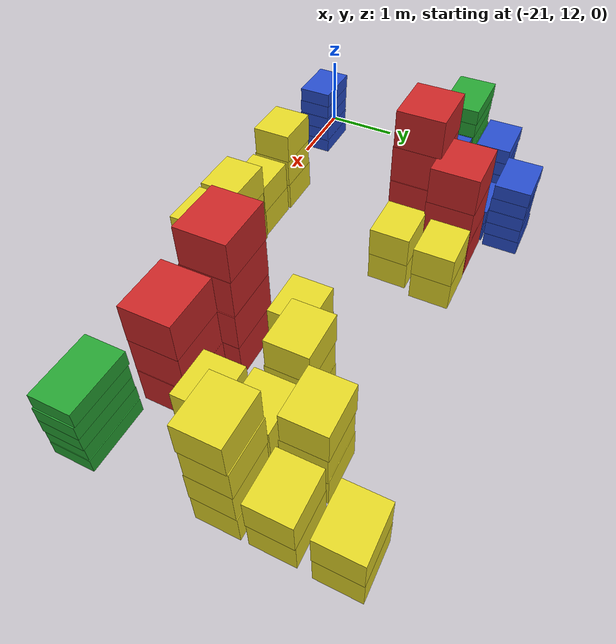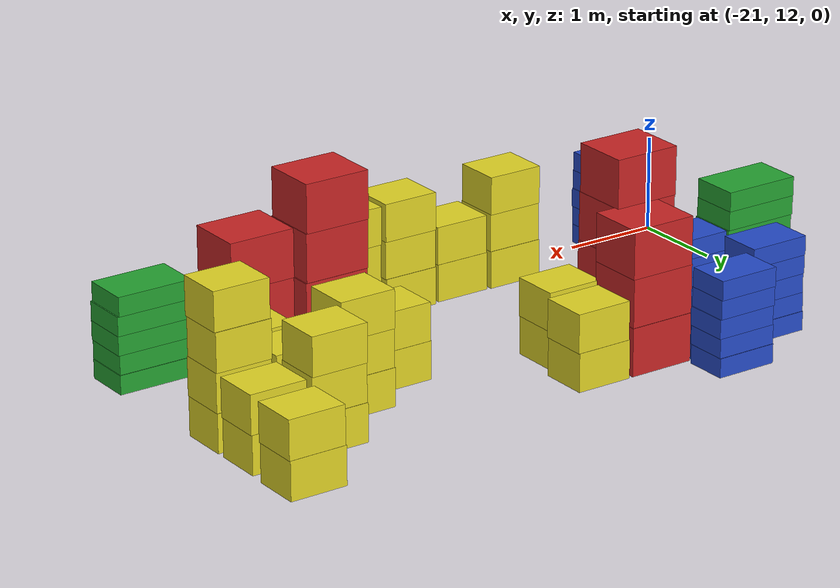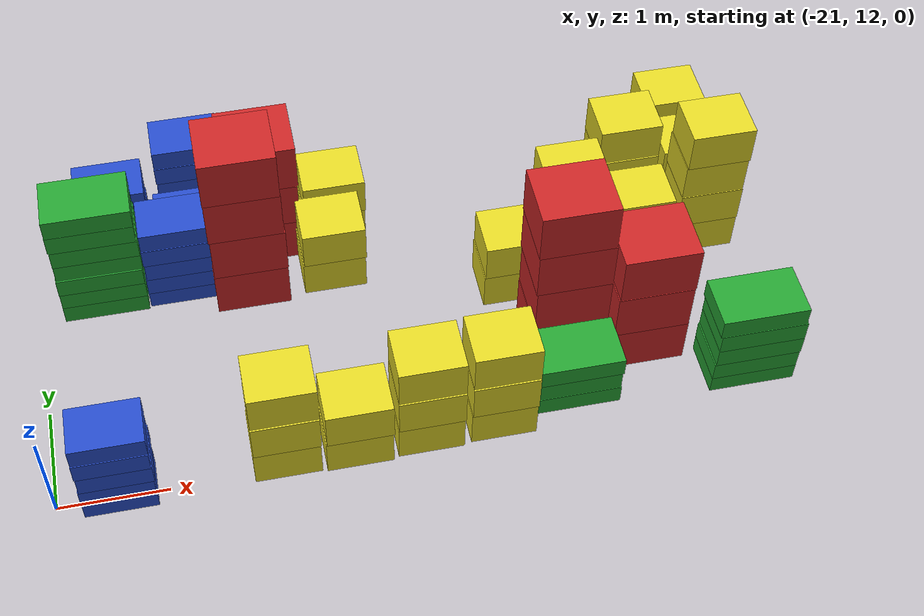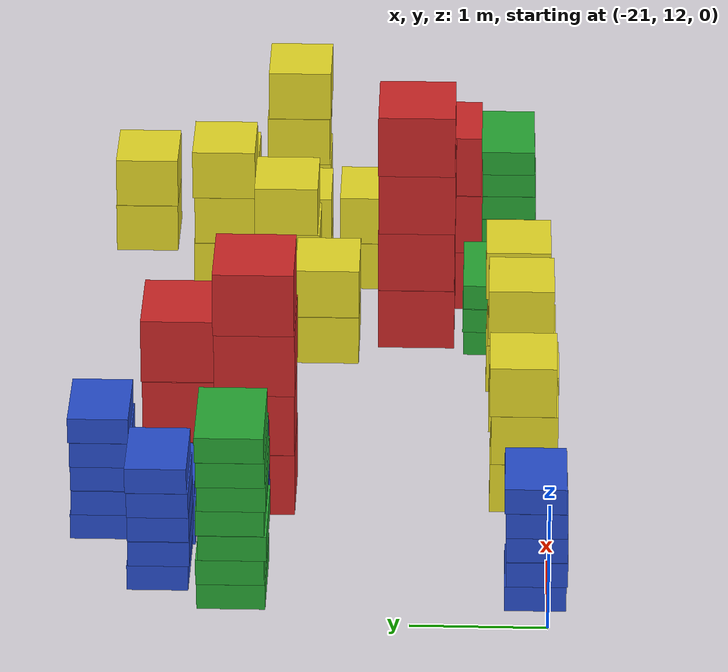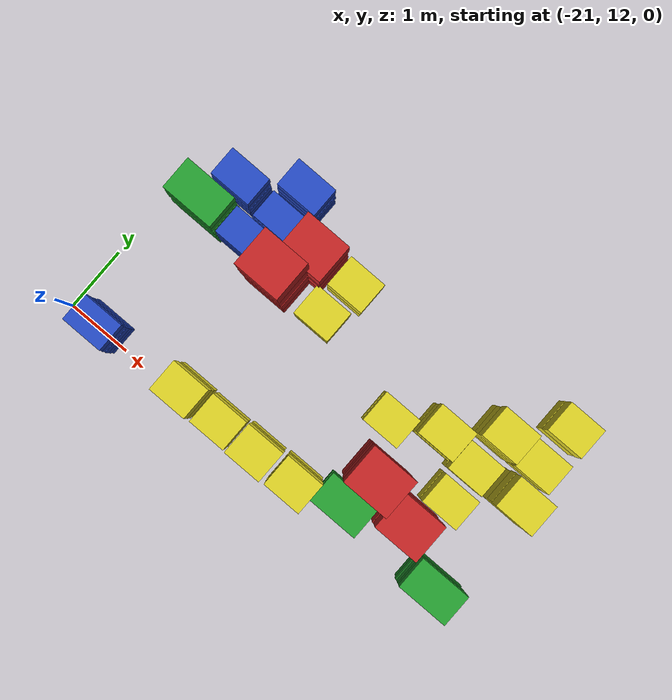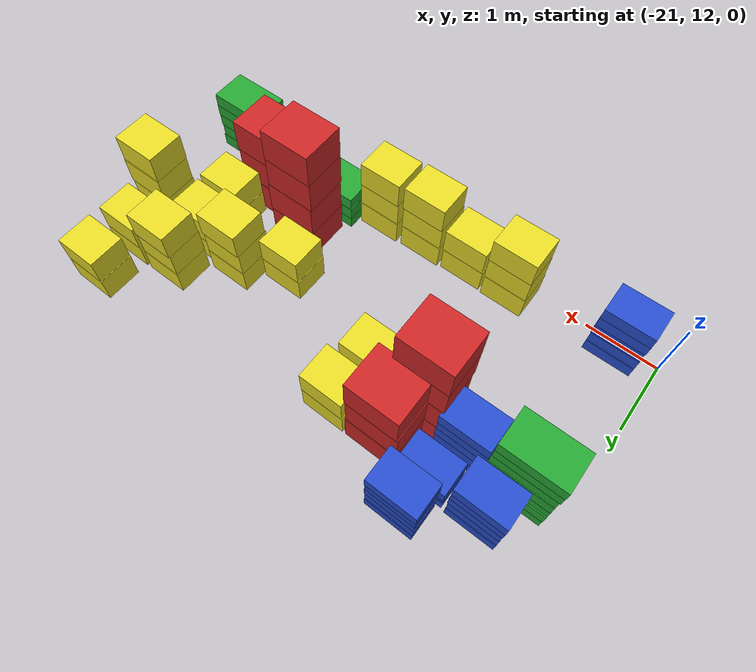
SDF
<sdf version="1.6">
 <world name="default">
  <include><uri>model://sun</uri></include>
  <model name="baggage_B_x5_9">
   <model name="baggage_B_0">
    <static>1</static>
    <link name="link">
     <collision name="collision"><geometry><box><size>0.65 0.45 0.2</size></box></geometry></collision>
     <visual name="visual">
      <geometry><box><size>0.65 0.45 0.2</size></box></geometry>
      <material>
       <script><uri>file://media/materials/scripts/gazebo.material</uri><name>Gazebo/Blue</name></script>
      </material>
     </visual>
    </link>
    <pose>0 0 0.1 0 -0 0</pose>
   </model>
   <model name="baggage_B_1">
    <static>1</static>
    <link name="link">
     <collision name="collision"><geometry><box><size>0.65 0.45 0.2</size></box></geometry></collision>
     <visual name="visual">
      <geometry><box><size>0.65 0.45 0.2</size></box></geometry>
      <material>
       <script><uri>file://media/materials/scripts/gazebo.material</uri><name>Gazebo/Blue</name></script>
      </material>
     </visual>
    </link>
    <pose>-0.0014 -0.0091 0.3 0 -0 0</pose>
   </model>
   <model name="baggage_B_2">
    <static>1</static>
    <link name="link">
     <collision name="collision"><geometry><box><size>0.65 0.45 0.2</size></box></geometry></collision>
     <visual name="visual">
      <geometry><box><size>0.65 0.45 0.2</size></box></geometry>
      <material>
       <script><uri>file://media/materials/scripts/gazebo.material</uri><name>Gazebo/Blue</name></script>
      </material>
     </visual>
    </link>
    <pose>0.0076 -0.0066 0.5 0 -0 0</pose>
   </model>
   <model name="baggage_B_3">
    <static>1</static>
    <link name="link">
     <collision name="collision"><geometry><box><size>0.65 0.45 0.2</size></box></geometry></collision>
     <visual name="visual">
      <geometry><box><size>0.65 0.45 0.2</size></box></geometry>
      <material>
       <script><uri>file://media/materials/scripts/gazebo.material</uri><name>Gazebo/Blue</name></script>
      </material>
     </visual>
    </link>
    <pose>0 -0.0032 0.7 0 -0 0</pose>
   </model>
   <model name="baggage_B_4">
    <static>1</static>
    <link name="link">
     <collision name="collision"><geometry><box><size>0.65 0.45 0.2</size></box></geometry></collision>
     <visual name="visual">
      <geometry><box><size>0.65 0.45 0.2</size></box></geometry>
      <material>
       <script><uri>file://media/materials/scripts/gazebo.material</uri><name>Gazebo/Blue</name></script>
      </material>
     </visual>
    </link>
    <pose>0.0023 0.0073 0.9 0 -0 0</pose>
   </model>
   <pose>-20.4337 12.0898 0 0 -0 0</pose>
  </model>
  <model name="baggage_C_x2_7">
   <model name="baggage_C_0">
    <static>1</static>
    <link name="link">
     <collision name="collision"><geometry><box><size>0.6 0.5 0.4</size></box></geometry></collision>
     <visual name="visual">
      <geometry><box><size>0.6 0.5 0.4</size></box></geometry>
      <material>
       <script><uri>file://media/materials/scripts/gazebo.material</uri><name>Gazebo/Yellow</name></script>
      </material>
     </visual>
    </link>
    <pose>0 0 0.2 0 -0 0</pose>
   </model>
   <model name="baggage_C_1">
    <static>1</static>
    <link name="link">
     <collision name="collision"><geometry><box><size>0.6 0.5 0.4</size></box></geometry></collision>
     <visual name="visual">
      <geometry><box><size>0.6 0.5 0.4</size></box></geometry>
      <material>
       <script><uri>file://media/materials/scripts/gazebo.material</uri><name>Gazebo/Yellow</name></script>
      </material>
     </visual>
    </link>
    <pose>0.0093 -0.002 0.6 0 -0 0</pose>
   </model>
   <pose>-14.5581 15.2406 0 0 -0 0</pose>
  </model>
  <model name="baggage_C_x2_8">
   <model name="baggage_C_0">
    <static>1</static>
    <link name="link">
     <collision name="collision"><geometry><box><size>0.6 0.5 0.4</size></box></geometry></collision>
     <visual name="visual">
      <geometry><box><size>0.6 0.5 0.4</size></box></geometry>
      <material>
       <script><uri>file://media/materials/scripts/gazebo.material</uri><name>Gazebo/Yellow</name></script>
      </material>
     </visual>
    </link>
    <pose>0 0 0.2 0 -0 0</pose>
   </model>
   <model name="baggage_C_1">
    <static>1</static>
    <link name="link">
     <collision name="collision"><geometry><box><size>0.6 0.5 0.4</size></box></geometry></collision>
     <visual name="visual">
      <geometry><box><size>0.6 0.5 0.4</size></box></geometry>
      <material>
       <script><uri>file://media/materials/scripts/gazebo.material</uri><name>Gazebo/Yellow</name></script>
      </material>
     </visual>
    </link>
    <pose>0.0093 -0.002 0.6 0 -0 0</pose>
   </model>
   <pose>-14.5734 14.5828 0 0 -0 0</pose>
  </model>
  <model name="baggage_C_x3_6">
   <model name="baggage_C_0">
    <static>1</static>
    <link name="link">
     <collision name="collision"><geometry><box><size>0.6 0.5 0.4</size></box></geometry></collision>
     <visual name="visual">
      <geometry><box><size>0.6 0.5 0.4</size></box></geometry>
      <material>
       <script><uri>file://media/materials/scripts/gazebo.material</uri><name>Gazebo/Yellow</name></script>
      </material>
     </visual>
    </link>
    <pose>0 0 0.2 0 -0 0</pose>
   </model>
   <model name="baggage_C_1">
    <static>1</static>
    <link name="link">
     <collision name="collision"><geometry><box><size>0.6 0.5 0.4</size></box></geometry></collision>
     <visual name="visual">
      <geometry><box><size>0.6 0.5 0.4</size></box></geometry>
      <material>
       <script><uri>file://media/materials/scripts/gazebo.material</uri><name>Gazebo/Yellow</name></script>
      </material>
     </visual>
    </link>
    <pose>0.0062 -0.0069 0.6 0 -0 0</pose>
   </model>
   <model name="baggage_C_2">
    <static>1</static>
    <link name="link">
     <collision name="collision"><geometry><box><size>0.6 0.5 0.4</size></box></geometry></collision>
     <visual name="visual">
      <geometry><box><size>0.6 0.5 0.4</size></box></geometry>
      <material>
       <script><uri>file://media/materials/scripts/gazebo.material</uri><name>Gazebo/Yellow</name></script>
      </material>
     </visual>
    </link>
    <pose>0.0089 0.0083 1 0 -0 0</pose>
   </model>
   <pose>-15.24 14.5733 0 0 -0 0</pose>
  </model>
  <model name="baggage_C_x2_9">
   <model name="baggage_C_0">
    <static>1</static>
    <link name="link">
     <collision name="collision"><geometry><box><size>0.6 0.5 0.4</size></box></geometry></collision>
     <visual name="visual">
      <geometry><box><size>0.6 0.5 0.4</size></box></geometry>
      <material>
       <script><uri>file://media/materials/scripts/gazebo.material</uri><name>Gazebo/Yellow</name></script>
      </material>
     </visual>
    </link>
    <pose>0 0 0.2 0 -0 0</pose>
   </model>
   <model name="baggage_C_1">
    <static>1</static>
    <link name="link">
     <collision name="collision"><geometry><box><size>0.6 0.5 0.4</size></box></geometry></collision>
     <visual name="visual">
      <geometry><box><size>0.6 0.5 0.4</size></box></geometry>
      <material>
       <script><uri>file://media/materials/scripts/gazebo.material</uri><name>Gazebo/Yellow</name></script>
      </material>
     </visual>
    </link>
    <pose>0.0093 -0.002 0.6 0 -0 0</pose>
   </model>
   <pose>-15.2448 13.9715 0 0 -0 0</pose>
  </model>
  <model name="baggage_C_x3_7">
   <model name="baggage_C_0">
    <static>1</static>
    <link name="link">
     <collision name="collision"><geometry><box><size>0.6 0.5 0.4</size></box></geometry></collision>
     <visual name="visual">
      <geometry><box><size>0.6 0.5 0.4</size></box></geometry>
      <material>
       <script><uri>file://media/materials/scripts/gazebo.material</uri><name>Gazebo/Yellow</name></script>
      </material>
     </visual>
    </link>
    <pose>0 0 0.2 0 -0 0</pose>
   </model>
   <model name="baggage_C_1">
    <static>1</static>
    <link name="link">
     <collision name="collision"><geometry><box><size>0.6 0.5 0.4</size></box></geometry></collision>
     <visual name="visual">
      <geometry><box><size>0.6 0.5 0.4</size></box></geometry>
      <material>
       <script><uri>file://media/materials/scripts/gazebo.material</uri><name>Gazebo/Yellow</name></script>
      </material>
     </visual>
    </link>
    <pose>0.0062 -0.0069 0.6 0 -0 0</pose>
   </model>
   <model name="baggage_C_2">
    <static>1</static>
    <link name="link">
     <collision name="collision"><geometry><box><size>0.6 0.5 0.4</size></box></geometry></collision>
     <visual name="visual">
      <geometry><box><size>0.6 0.5 0.4</size></box></geometry>
      <material>
       <script><uri>file://media/materials/scripts/gazebo.material</uri><name>Gazebo/Yellow</name></script>
      </material>
     </visual>
    </link>
    <pose>0.0089 0.0083 1 0 -0 0</pose>
   </model>
   <pose>-15.8997 14.0504 0 0 -0 0</pose>
  </model>
  <model name="baggage_C_x4_1">
   <model name="baggage_C_0">
    <static>1</static>
    <link name="link">
     <collision name="collision"><geometry><box><size>0.6 0.5 0.4</size></box></geometry></collision>
     <visual name="visual">
      <geometry><box><size>0.6 0.5 0.4</size></box></geometry>
      <material>
       <script><uri>file://media/materials/scripts/gazebo.material</uri><name>Gazebo/Yellow</name></script>
      </material>
     </visual>
    </link>
    <pose>0 0 0.2 0 -0 0</pose>
   </model>
   <model name="baggage_C_1">
    <static>1</static>
    <link name="link">
     <collision name="collision"><geometry><box><size>0.6 0.5 0.4</size></box></geometry></collision>
     <visual name="visual">
      <geometry><box><size>0.6 0.5 0.4</size></box></geometry>
      <material>
       <script><uri>file://media/materials/scripts/gazebo.material</uri><name>Gazebo/Yellow</name></script>
      </material>
     </visual>
    </link>
    <pose>0.0008 -0.0083 0.6 0 -0 0</pose>
   </model>
   <model name="baggage_C_2">
    <static>1</static>
    <link name="link">
     <collision name="collision"><geometry><box><size>0.6 0.5 0.4</size></box></geometry></collision>
     <visual name="visual">
      <geometry><box><size>0.6 0.5 0.4</size></box></geometry>
      <material>
       <script><uri>file://media/materials/scripts/gazebo.material</uri><name>Gazebo/Yellow</name></script>
      </material>
     </visual>
    </link>
    <pose>0.0001 0.0014 1 0 -0 0</pose>
   </model>
   <model name="baggage_C_3">
    <static>1</static>
    <link name="link">
     <collision name="collision"><geometry><box><size>0.6 0.5 0.4</size></box></geometry></collision>
     <visual name="visual">
      <geometry><box><size>0.6 0.5 0.4</size></box></geometry>
      <material>
       <script><uri>file://media/materials/scripts/gazebo.material</uri><name>Gazebo/Yellow</name></script>
      </material>
     </visual>
    </link>
    <pose>0.007 -0.0089 1.4 0 -0 0</pose>
   </model>
   <pose>-14.5712 13.9995 0 0 -0 0</pose>
  </model>
  <model name="baggage_C_x2_10">
   <model name="baggage_C_0">
    <static>1</static>
    <link name="link">
     <collision name="collision"><geometry><box><size>0.6 0.5 0.4</size></box></geometry></collision>
     <visual name="visual">
      <geometry><box><size>0.6 0.5 0.4</size></box></geometry>
      <material>
       <script><uri>file://media/materials/scripts/gazebo.material</uri><name>Gazebo/Yellow</name></script>
      </material>
     </visual>
    </link>
    <pose>0 0 0.2 0 -0 0</pose>
   </model>
   <model name="baggage_C_1">
    <static>1</static>
    <link name="link">
     <collision name="collision"><geometry><box><size>0.6 0.5 0.4</size></box></geometry></collision>
     <visual name="visual">
      <geometry><box><size>0.6 0.5 0.4</size></box></geometry>
      <material>
       <script><uri>file://media/materials/scripts/gazebo.material</uri><name>Gazebo/Yellow</name></script>
      </material>
     </visual>
    </link>
    <pose>0.0093 -0.002 0.6 0 -0 0</pose>
   </model>
   <pose>-15.2155 13.4005 0 0 -0 0</pose>
  </model>
  <model name="baggage_B_x5_10">
   <model name="baggage_B_0">
    <static>1</static>
    <link name="link">
     <collision name="collision"><geometry><box><size>0.65 0.45 0.2</size></box></geometry></collision>
     <visual name="visual">
      <geometry><box><size>0.65 0.45 0.2</size></box></geometry>
      <material>
       <script><uri>file://media/materials/scripts/gazebo.material</uri><name>Gazebo/Blue</name></script>
      </material>
     </visual>
    </link>
    <pose>0 0 0.1 0 -0 0</pose>
   </model>
   <model name="baggage_B_1">
    <static>1</static>
    <link name="link">
     <collision name="collision"><geometry><box><size>0.65 0.45 0.2</size></box></geometry></collision>
     <visual name="visual">
      <geometry><box><size>0.65 0.45 0.2</size></box></geometry>
      <material>
       <script><uri>file://media/materials/scripts/gazebo.material</uri><name>Gazebo/Blue</name></script>
      </material>
     </visual>
    </link>
    <pose>-0.0014 -0.0091 0.3 0 -0 0</pose>
   </model>
   <model name="baggage_B_2">
    <static>1</static>
    <link name="link">
     <collision name="collision"><geometry><box><size>0.65 0.45 0.2</size></box></geometry></collision>
     <visual name="visual">
      <geometry><box><size>0.65 0.45 0.2</size></box></geometry>
      <material>
       <script><uri>file://media/materials/scripts/gazebo.material</uri><name>Gazebo/Blue</name></script>
      </material>
     </visual>
    </link>
    <pose>0.0076 -0.0066 0.5 0 -0 0</pose>
   </model>
   <model name="baggage_B_3">
    <static>1</static>
    <link name="link">
     <collision name="collision"><geometry><box><size>0.65 0.45 0.2</size></box></geometry></collision>
     <visual name="visual">
      <geometry><box><size>0.65 0.45 0.2</size></box></geometry>
      <material>
       <script><uri>file://media/materials/scripts/gazebo.material</uri><name>Gazebo/Blue</name></script>
      </material>
     </visual>
    </link>
    <pose>0 -0.0032 0.7 0 -0 0</pose>
   </model>
   <model name="baggage_B_4">
    <static>1</static>
    <link name="link">
     <collision name="collision"><geometry><box><size>0.65 0.45 0.2</size></box></geometry></collision>
     <visual name="visual">
      <geometry><box><size>0.65 0.45 0.2</size></box></geometry>
      <material>
       <script><uri>file://media/materials/scripts/gazebo.material</uri><name>Gazebo/Blue</name></script>
      </material>
     </visual>
    </link>
    <pose>0.0023 0.0073 0.9 0 -0 0</pose>
   </model>
   <pose>-19.436 15.3181 0 0 -0 0</pose>
  </model>
  <model name="baggage_B_x3_12">
   <model name="baggage_B_0">
    <static>1</static>
    <link name="link">
     <collision name="collision"><geometry><box><size>0.65 0.45 0.2</size></box></geometry></collision>
     <visual name="visual">
      <geometry><box><size>0.65 0.45 0.2</size></box></geometry>
      <material>
       <script><uri>file://media/materials/scripts/gazebo.material</uri><name>Gazebo/Blue</name></script>
      </material>
     </visual>
    </link>
    <pose>0 0 0.1 0 -0 0</pose>
   </model>
   <model name="baggage_B_1">
    <static>1</static>
    <link name="link">
     <collision name="collision"><geometry><box><size>0.65 0.45 0.2</size></box></geometry></collision>
     <visual name="visual">
      <geometry><box><size>0.65 0.45 0.2</size></box></geometry>
      <material>
       <script><uri>file://media/materials/scripts/gazebo.material</uri><name>Gazebo/Blue</name></script>
      </material>
     </visual>
    </link>
    <pose>0.0028 -0.0086 0.3 0 -0 0</pose>
   </model>
   <model name="baggage_B_2">
    <static>1</static>
    <link name="link">
     <collision name="collision"><geometry><box><size>0.65 0.45 0.2</size></box></geometry></collision>
     <visual name="visual">
      <geometry><box><size>0.65 0.45 0.2</size></box></geometry>
      <material>
       <script><uri>file://media/materials/scripts/gazebo.material</uri><name>Gazebo/Blue</name></script>
      </material>
     </visual>
    </link>
    <pose>0.0092 0.006 0.4 0 -0 0</pose>
   </model>
   <pose>-19.5014 14.8307 0 0 -0 0</pose>
  </model>
  <model name="baggage_B_x5_11">
   <model name="baggage_B_0">
    <static>1</static>
    <link name="link">
     <collision name="collision"><geometry><box><size>0.65 0.45 0.2</size></box></geometry></collision>
     <visual name="visual">
      <geometry><box><size>0.65 0.45 0.2</size></box></geometry>
      <material>
       <script><uri>file://media/materials/scripts/gazebo.material</uri><name>Gazebo/Blue</name></script>
      </material>
     </visual>
    </link>
    <pose>0 0 0.1 0 -0 0</pose>
   </model>
   <model name="baggage_B_1">
    <static>1</static>
    <link name="link">
     <collision name="collision"><geometry><box><size>0.65 0.45 0.2</size></box></geometry></collision>
     <visual name="visual">
      <geometry><box><size>0.65 0.45 0.2</size></box></geometry>
      <material>
       <script><uri>file://media/materials/scripts/gazebo.material</uri><name>Gazebo/Blue</name></script>
      </material>
     </visual>
    </link>
    <pose>-0.0014 -0.0091 0.3 0 -0 0</pose>
   </model>
   <model name="baggage_B_2">
    <static>1</static>
    <link name="link">
     <collision name="collision"><geometry><box><size>0.65 0.45 0.2</size></box></geometry></collision>
     <visual name="visual">
      <geometry><box><size>0.65 0.45 0.2</size></box></geometry>
      <material>
       <script><uri>file://media/materials/scripts/gazebo.material</uri><name>Gazebo/Blue</name></script>
      </material>
     </visual>
    </link>
    <pose>0.0076 -0.0066 0.5 0 -0 0</pose>
   </model>
   <model name="baggage_B_3">
    <static>1</static>
    <link name="link">
     <collision name="collision"><geometry><box><size>0.65 0.45 0.2</size></box></geometry></collision>
     <visual name="visual">
      <geometry><box><size>0.65 0.45 0.2</size></box></geometry>
      <material>
       <script><uri>file://media/materials/scripts/gazebo.material</uri><name>Gazebo/Blue</name></script>
      </material>
     </visual>
    </link>
    <pose>0 -0.0032 0.7 0 -0 0</pose>
   </model>
   <model name="baggage_B_4">
    <static>1</static>
    <link name="link">
     <collision name="collision"><geometry><box><size>0.65 0.45 0.2</size></box></geometry></collision>
     <visual name="visual">
      <geometry><box><size>0.65 0.45 0.2</size></box></geometry>
      <material>
       <script><uri>file://media/materials/scripts/gazebo.material</uri><name>Gazebo/Blue</name></script>
      </material>
     </visual>
    </link>
    <pose>0.0023 0.0073 0.9 0 -0 0</pose>
   </model>
   <pose>-20.2017 14.8519 0 0 -0 0</pose>
  </model>
  <model name="baggage_D_x7_2">
   <model name="baggage_D_0">
    <static>1</static>
    <link name="link">
     <collision name="collision"><geometry><box><size>0.8 0.5 0.2</size></box></geometry></collision>
     <visual name="visual">
      <geometry><box><size>0.8 0.5 0.2</size></box></geometry>
      <material>
       <script><uri>file://media/materials/scripts/gazebo.material</uri><name>Gazebo/Green</name></script>
      </material>
     </visual>
    </link>
    <pose>0 0 0.1 0 -0 0</pose>
   </model>
   <model name="baggage_D_1">
    <static>1</static>
    <link name="link">
     <collision name="collision"><geometry><box><size>0.8 0.5 0.2</size></box></geometry></collision>
     <visual name="visual">
      <geometry><box><size>0.8 0.5 0.2</size></box></geometry>
      <material>
       <script><uri>file://media/materials/scripts/gazebo.material</uri><name>Gazebo/Green</name></script>
      </material>
     </visual>
    </link>
    <pose>0.0009 0.0063 0.3 0 -0 0</pose>
   </model>
   <model name="baggage_D_2">
    <static>1</static>
    <link name="link">
     <collision name="collision"><geometry><box><size>0.8 0.5 0.2</size></box></geometry></collision>
     <visual name="visual">
      <geometry><box><size>0.8 0.5 0.2</size></box></geometry>
      <material>
       <script><uri>file://media/materials/scripts/gazebo.material</uri><name>Gazebo/Green</name></script>
      </material>
     </visual>
    </link>
    <pose>0.0011 -0.0098 0.5 0 -0 0</pose>
   </model>
   <model name="baggage_D_3">
    <static>1</static>
    <link name="link">
     <collision name="collision"><geometry><box><size>0.8 0.5 0.2</size></box></geometry></collision>
     <visual name="visual">
      <geometry><box><size>0.8 0.5 0.2</size></box></geometry>
      <material>
       <script><uri>file://media/materials/scripts/gazebo.material</uri><name>Gazebo/Green</name></script>
      </material>
     </visual>
    </link>
    <pose>0.0089 0.0055 0.7 0 -0 0</pose>
   </model>
   <model name="baggage_D_4">
    <static>1</static>
    <link name="link">
     <collision name="collision"><geometry><box><size>0.8 0.5 0.2</size></box></geometry></collision>
     <visual name="visual">
      <geometry><box><size>0.8 0.5 0.2</size></box></geometry>
      <material>
       <script><uri>file://media/materials/scripts/gazebo.material</uri><name>Gazebo/Green</name></script>
      </material>
     </visual>
    </link>
    <pose>0.009 -0.0056 0.9 0 -0 0</pose>
   </model>
   <model name="baggage_D_5">
    <static>1</static>
    <link name="link">
     <collision name="collision"><geometry><box><size>0.8 0.5 0.2</size></box></geometry></collision>
     <visual name="visual">
      <geometry><box><size>0.8 0.5 0.2</size></box></geometry>
      <material>
       <script><uri>file://media/materials/scripts/gazebo.material</uri><name>Gazebo/Green</name></script>
      </material>
     </visual>
    </link>
    <pose>0.0001 0.0013 1.1 0 -0 0</pose>
   </model>
   <model name="baggage_D_6">
    <static>1</static>
    <link name="link">
     <collision name="collision"><geometry><box><size>0.8 0.5 0.2</size></box></geometry></collision>
     <visual name="visual">
      <geometry><box><size>0.8 0.5 0.2</size></box></geometry>
      <material>
       <script><uri>file://media/materials/scripts/gazebo.material</uri><name>Gazebo/Green</name></script>
      </material>
     </visual>
    </link>
    <pose>0.0019 0.009 1.3 0 -0 0</pose>
   </model>
   <pose>-20.393 14.303 0 0 -0 0</pose>
  </model>
  <model name="baggage_D_x5_5">
   <model name="baggage_D_0">
    <static>1</static>
    <link name="link">
     <collision name="collision"><geometry><box><size>0.8 0.5 0.2</size></box></geometry></collision>
     <visual name="visual">
      <geometry><box><size>0.8 0.5 0.2</size></box></geometry>
      <material>
       <script><uri>file://media/materials/scripts/gazebo.material</uri><name>Gazebo/Green</name></script>
      </material>
     </visual>
    </link>
    <pose>0 0 0.1 0 -0 0</pose>
   </model>
   <model name="baggage_D_1">
    <static>1</static>
    <link name="link">
     <collision name="collision"><geometry><box><size>0.8 0.5 0.2</size></box></geometry></collision>
     <visual name="visual">
      <geometry><box><size>0.8 0.5 0.2</size></box></geometry>
      <material>
       <script><uri>file://media/materials/scripts/gazebo.material</uri><name>Gazebo/Green</name></script>
      </material>
     </visual>
    </link>
    <pose>-0.0065 -0.0092 0.3 0 -0 0</pose>
   </model>
   <model name="baggage_D_2">
    <static>1</static>
    <link name="link">
     <collision name="collision"><geometry><box><size>0.8 0.5 0.2</size></box></geometry></collision>
     <visual name="visual">
      <geometry><box><size>0.8 0.5 0.2</size></box></geometry>
      <material>
       <script><uri>file://media/materials/scripts/gazebo.material</uri><name>Gazebo/Green</name></script>
      </material>
     </visual>
    </link>
    <pose>0.005 -0.0052 0.5 0 -0 0</pose>
   </model>
   <model name="baggage_D_3">
    <static>1</static>
    <link name="link">
     <collision name="collision"><geometry><box><size>0.8 0.5 0.2</size></box></geometry></collision>
     <visual name="visual">
      <geometry><box><size>0.8 0.5 0.2</size></box></geometry>
      <material>
       <script><uri>file://media/materials/scripts/gazebo.material</uri><name>Gazebo/Green</name></script>
      </material>
     </visual>
    </link>
    <pose>0.0074 0.0002 0.7 0 -0 0</pose>
   </model>
   <model name="baggage_D_4">
    <static>1</static>
    <link name="link">
     <collision name="collision"><geometry><box><size>0.8 0.5 0.2</size></box></geometry></collision>
     <visual name="visual">
      <geometry><box><size>0.8 0.5 0.2</size></box></geometry>
      <material>
       <script><uri>file://media/materials/scripts/gazebo.material</uri><name>Gazebo/Green</name></script>
      </material>
     </visual>
    </link>
    <pose>-0.006 0.0081 0.9 0 -0 0</pose>
   </model>
   <pose>-14.6214 12.3327 0 0 -0 0</pose>
  </model>
  <model name="baggage_A_x3_6">
   <model name="baggage_A_0">
    <static>1</static>
    <link name="link">
     <collision name="collision"><geometry><box><size>0.7 0.6 0.5</size></box></geometry></collision>
     <visual name="visual">
      <geometry><box><size>0.7 0.6 0.5</size></box></geometry>
      <material>
       <script><uri>file://media/materials/scripts/gazebo.material</uri><name>Gazebo/Red</name></script>
      </material>
     </visual>
    </link>
    <pose>0 0 0.25 0 -0 0</pose>
   </model>
   <model name="baggage_A_1">
    <static>1</static>
    <link name="link">
     <collision name="collision"><geometry><box><size>0.7 0.6 0.5</size></box></geometry></collision>
     <visual name="visual">
      <geometry><box><size>0.7 0.6 0.5</size></box></geometry>
      <material>
       <script><uri>file://media/materials/scripts/gazebo.material</uri><name>Gazebo/Red</name></script>
      </material>
     </visual>
    </link>
    <pose>-0.006 -0.0077 0.75 0 -0 0</pose>
   </model>
   <model name="baggage_A_2">
    <static>1</static>
    <link name="link">
     <collision name="collision"><geometry><box><size>0.7 0.6 0.5</size></box></geometry></collision>
     <visual name="visual">
      <geometry><box><size>0.7 0.6 0.5</size></box></geometry>
      <material>
       <script><uri>file://media/materials/scripts/gazebo.material</uri><name>Gazebo/Red</name></script>
      </material>
     </visual>
    </link>
    <pose>0.0045 0.0005 1.25 0 -0 0</pose>
   </model>
   <pose>-15.5025 12.8173 0 0 -0 0</pose>
  </model>
  <model name="baggage_C_x3_8">
   <model name="baggage_C_0">
    <static>1</static>
    <link name="link">
     <collision name="collision"><geometry><box><size>0.6 0.5 0.4</size></box></geometry></collision>
     <visual name="visual">
      <geometry><box><size>0.6 0.5 0.4</size></box></geometry>
      <material>
       <script><uri>file://media/materials/scripts/gazebo.material</uri><name>Gazebo/Yellow</name></script>
      </material>
     </visual>
    </link>
    <pose>0 0 0.2 0 -0 0</pose>
   </model>
   <model name="baggage_C_1">
    <static>1</static>
    <link name="link">
     <collision name="collision"><geometry><box><size>0.6 0.5 0.4</size></box></geometry></collision>
     <visual name="visual">
      <geometry><box><size>0.6 0.5 0.4</size></box></geometry>
      <material>
       <script><uri>file://media/materials/scripts/gazebo.material</uri><name>Gazebo/Yellow</name></script>
      </material>
     </visual>
    </link>
    <pose>0.0062 -0.0069 0.6 0 -0 0</pose>
   </model>
   <model name="baggage_C_2">
    <static>1</static>
    <link name="link">
     <collision name="collision"><geometry><box><size>0.6 0.5 0.4</size></box></geometry></collision>
     <visual name="visual">
      <geometry><box><size>0.6 0.5 0.4</size></box></geometry>
      <material>
       <script><uri>file://media/materials/scripts/gazebo.material</uri><name>Gazebo/Yellow</name></script>
      </material>
     </visual>
    </link>
    <pose>0.0089 0.0083 1 0 -0 0</pose>
   </model>
   <pose>-16.997 12.2151 0 0 -0 0</pose>
  </model>
  <model name="baggage_C_x3_10">
   <model name="baggage_C_0">
    <static>1</static>
    <link name="link">
     <collision name="collision"><geometry><box><size>0.6 0.5 0.4</size></box></geometry></collision>
     <visual name="visual">
      <geometry><box><size>0.6 0.5 0.4</size></box></geometry>
      <material>
       <script><uri>file://media/materials/scripts/gazebo.material</uri><name>Gazebo/Yellow</name></script>
      </material>
     </visual>
    </link>
    <pose>0 0 0.2 0 -0 0</pose>
   </model>
   <model name="baggage_C_1">
    <static>1</static>
    <link name="link">
     <collision name="collision"><geometry><box><size>0.6 0.5 0.4</size></box></geometry></collision>
     <visual name="visual">
      <geometry><box><size>0.6 0.5 0.4</size></box></geometry>
      <material>
       <script><uri>file://media/materials/scripts/gazebo.material</uri><name>Gazebo/Yellow</name></script>
      </material>
     </visual>
    </link>
    <pose>0.0062 -0.0069 0.6 0 -0 0</pose>
   </model>
   <model name="baggage_C_2">
    <static>1</static>
    <link name="link">
     <collision name="collision"><geometry><box><size>0.6 0.5 0.4</size></box></geometry></collision>
     <visual name="visual">
      <geometry><box><size>0.6 0.5 0.4</size></box></geometry>
      <material>
       <script><uri>file://media/materials/scripts/gazebo.material</uri><name>Gazebo/Yellow</name></script>
      </material>
     </visual>
    </link>
    <pose>0.0089 0.0083 1 0 -0 0</pose>
   </model>
   <pose>-17.6644 12.1922 0 0 -0 0</pose>
  </model>
  <model name="baggage_C_x2_12">
   <model name="baggage_C_0">
    <static>1</static>
    <link name="link">
     <collision name="collision"><geometry><box><size>0.6 0.5 0.4</size></box></geometry></collision>
     <visual name="visual">
      <geometry><box><size>0.6 0.5 0.4</size></box></geometry>
      <material>
       <script><uri>file://media/materials/scripts/gazebo.material</uri><name>Gazebo/Yellow</name></script>
      </material>
     </visual>
    </link>
    <pose>0 0 0.2 0 -0 0</pose>
   </model>
   <model name="baggage_C_1">
    <static>1</static>
    <link name="link">
     <collision name="collision"><geometry><box><size>0.6 0.5 0.4</size></box></geometry></collision>
     <visual name="visual">
      <geometry><box><size>0.6 0.5 0.4</size></box></geometry>
      <material>
       <script><uri>file://media/materials/scripts/gazebo.material</uri><name>Gazebo/Yellow</name></script>
      </material>
     </visual>
    </link>
    <pose>0.0093 -0.002 0.6 0 -0 0</pose>
   </model>
   <pose>-18.3115 12.1671 0 0 -0 0</pose>
  </model>
  <model name="baggage_C_x3_13">
   <model name="baggage_C_0">
    <static>1</static>
    <link name="link">
     <collision name="collision"><geometry><box><size>0.6 0.5 0.4</size></box></geometry></collision>
     <visual name="visual">
      <geometry><box><size>0.6 0.5 0.4</size></box></geometry>
      <material>
       <script><uri>file://media/materials/scripts/gazebo.material</uri><name>Gazebo/Yellow</name></script>
      </material>
     </visual>
    </link>
    <pose>0 0 0.2 0 -0 0</pose>
   </model>
   <model name="baggage_C_1">
    <static>1</static>
    <link name="link">
     <collision name="collision"><geometry><box><size>0.6 0.5 0.4</size></box></geometry></collision>
     <visual name="visual">
      <geometry><box><size>0.6 0.5 0.4</size></box></geometry>
      <material>
       <script><uri>file://media/materials/scripts/gazebo.material</uri><name>Gazebo/Yellow</name></script>
      </material>
     </visual>
    </link>
    <pose>0.0062 -0.0069 0.6 0 -0 0</pose>
   </model>
   <model name="baggage_C_2">
    <static>1</static>
    <link name="link">
     <collision name="collision"><geometry><box><size>0.6 0.5 0.4</size></box></geometry></collision>
     <visual name="visual">
      <geometry><box><size>0.6 0.5 0.4</size></box></geometry>
      <material>
       <script><uri>file://media/materials/scripts/gazebo.material</uri><name>Gazebo/Yellow</name></script>
      </material>
     </visual>
    </link>
    <pose>0.0089 0.0083 1 0 -0 0</pose>
   </model>
   <pose>-18.9532 12.18 0 0 -0 0</pose>
  </model>
  <model name="baggage_B_x5_12">
   <model name="baggage_B_0">
    <static>1</static>
    <link name="link">
     <collision name="collision"><geometry><box><size>0.65 0.45 0.2</size></box></geometry></collision>
     <visual name="visual">
      <geometry><box><size>0.65 0.45 0.2</size></box></geometry>
      <material>
       <script><uri>file://media/materials/scripts/gazebo.material</uri><name>Gazebo/Blue</name></script>
      </material>
     </visual>
    </link>
    <pose>0 0 0.1 0 -0 0</pose>
   </model>
   <model name="baggage_B_1">
    <static>1</static>
    <link name="link">
     <collision name="collision"><geometry><box><size>0.65 0.45 0.2</size></box></geometry></collision>
     <visual name="visual">
      <geometry><box><size>0.65 0.45 0.2</size></box></geometry>
      <material>
       <script><uri>file://media/materials/scripts/gazebo.material</uri><name>Gazebo/Blue</name></script>
      </material>
     </visual>
    </link>
    <pose>-0.0014 -0.0091 0.3 0 -0 0</pose>
   </model>
   <model name="baggage_B_2">
    <static>1</static>
    <link name="link">
     <collision name="collision"><geometry><box><size>0.65 0.45 0.2</size></box></geometry></collision>
     <visual name="visual">
      <geometry><box><size>0.65 0.45 0.2</size></box></geometry>
      <material>
       <script><uri>file://media/materials/scripts/gazebo.material</uri><name>Gazebo/Blue</name></script>
      </material>
     </visual>
    </link>
    <pose>0.0076 -0.0066 0.5 0 -0 0</pose>
   </model>
   <model name="baggage_B_3">
    <static>1</static>
    <link name="link">
     <collision name="collision"><geometry><box><size>0.65 0.45 0.2</size></box></geometry></collision>
     <visual name="visual">
      <geometry><box><size>0.65 0.45 0.2</size></box></geometry>
      <material>
       <script><uri>file://media/materials/scripts/gazebo.material</uri><name>Gazebo/Blue</name></script>
      </material>
     </visual>
    </link>
    <pose>0 -0.0032 0.7 0 -0 0</pose>
   </model>
   <model name="baggage_B_4">
    <static>1</static>
    <link name="link">
     <collision name="collision"><geometry><box><size>0.65 0.45 0.2</size></box></geometry></collision>
     <visual name="visual">
      <geometry><box><size>0.65 0.45 0.2</size></box></geometry>
      <material>
       <script><uri>file://media/materials/scripts/gazebo.material</uri><name>Gazebo/Blue</name></script>
      </material>
     </visual>
    </link>
    <pose>0.0023 0.0073 0.9 0 -0 0</pose>
   </model>
   <pose>-19.6521 14.3048 0 0 -0 0</pose>
  </model>
  <model name="baggage_A_x4_9">
   <model name="baggage_A_0">
    <static>1</static>
    <link name="link">
     <collision name="collision"><geometry><box><size>0.7 0.6 0.5</size></box></geometry></collision>
     <visual name="visual">
      <geometry><box><size>0.7 0.6 0.5</size></box></geometry>
      <material>
       <script><uri>file://media/materials/scripts/gazebo.material</uri><name>Gazebo/Red</name></script>
      </material>
     </visual>
    </link>
    <pose>0 0 0.25 0 -0 0</pose>
   </model>
   <model name="baggage_A_1">
    <static>1</static>
    <link name="link">
     <collision name="collision"><geometry><box><size>0.7 0.6 0.5</size></box></geometry></collision>
     <visual name="visual">
      <geometry><box><size>0.7 0.6 0.5</size></box></geometry>
      <material>
       <script><uri>file://media/materials/scripts/gazebo.material</uri><name>Gazebo/Red</name></script>
      </material>
     </visual>
    </link>
    <pose>0.0053 0.0033 0.75 0 -0 0</pose>
   </model>
   <model name="baggage_A_2">
    <static>1</static>
    <link name="link">
     <collision name="collision"><geometry><box><size>0.7 0.6 0.5</size></box></geometry></collision>
     <visual name="visual">
      <geometry><box><size>0.7 0.6 0.5</size></box></geometry>
      <material>
       <script><uri>file://media/materials/scripts/gazebo.material</uri><name>Gazebo/Red</name></script>
      </material>
     </visual>
    </link>
    <pose>-0.0056 -0.0003 1.25 0 -0 0</pose>
   </model>
   <model name="baggage_A_3">
    <static>1</static>
    <link name="link">
     <collision name="collision"><geometry><box><size>0.7 0.6 0.5</size></box></geometry></collision>
     <visual name="visual">
      <geometry><box><size>0.7 0.6 0.5</size></box></geometry>
      <material>
       <script><uri>file://media/materials/scripts/gazebo.material</uri><name>Gazebo/Red</name></script>
      </material>
     </visual>
    </link>
    <pose>-0.0098 0.0065 1.75 0 -0 0</pose>
   </model>
   <pose>-18.9973 14.1857 0 0 -0 0</pose>
  </model>
  <model name="baggage_A_x3_12">
   <model name="baggage_A_0">
    <static>1</static>
    <link name="link">
     <collision name="collision"><geometry><box><size>0.7 0.6 0.5</size></box></geometry></collision>
     <visual name="visual">
      <geometry><box><size>0.7 0.6 0.5</size></box></geometry>
      <material>
       <script><uri>file://media/materials/scripts/gazebo.material</uri><name>Gazebo/Red</name></script>
      </material>
     </visual>
    </link>
    <pose>0 0 0.25 0 -0 0</pose>
   </model>
   <model name="baggage_A_1">
    <static>1</static>
    <link name="link">
     <collision name="collision"><geometry><box><size>0.7 0.6 0.5</size></box></geometry></collision>
     <visual name="visual">
      <geometry><box><size>0.7 0.6 0.5</size></box></geometry>
      <material>
       <script><uri>file://media/materials/scripts/gazebo.material</uri><name>Gazebo/Red</name></script>
      </material>
     </visual>
    </link>
    <pose>-0.006 -0.0077 0.75 0 -0 0</pose>
   </model>
   <model name="baggage_A_2">
    <static>1</static>
    <link name="link">
     <collision name="collision"><geometry><box><size>0.7 0.6 0.5</size></box></geometry></collision>
     <visual name="visual">
      <geometry><box><size>0.7 0.6 0.5</size></box></geometry>
      <material>
       <script><uri>file://media/materials/scripts/gazebo.material</uri><name>Gazebo/Red</name></script>
      </material>
     </visual>
    </link>
    <pose>0.0045 0.0005 1.25 0 -0 0</pose>
   </model>
   <pose>-18.7939 14.7382 0 0 -0 0</pose>
  </model>
  <model name="baggage_C_x2_13">
   <model name="baggage_C_0">
    <static>1</static>
    <link name="link">
     <collision name="collision"><geometry><box><size>0.6 0.5 0.4</size></box></geometry></collision>
     <visual name="visual">
      <geometry><box><size>0.6 0.5 0.4</size></box></geometry>
      <material>
       <script><uri>file://media/materials/scripts/gazebo.material</uri><name>Gazebo/Yellow</name></script>
      </material>
     </visual>
    </link>
    <pose>0 0 0.2 0 -0 0</pose>
   </model>
   <model name="baggage_C_1">
    <static>1</static>
    <link name="link">
     <collision name="collision"><geometry><box><size>0.6 0.5 0.4</size></box></geometry></collision>
     <visual name="visual">
      <geometry><box><size>0.6 0.5 0.4</size></box></geometry>
      <material>
       <script><uri>file://media/materials/scripts/gazebo.material</uri><name>Gazebo/Yellow</name></script>
      </material>
     </visual>
    </link>
    <pose>0.0093 -0.002 0.6 0 -0 0</pose>
   </model>
   <pose>-18.1034 14.7905 0 0 -0 0</pose>
  </model>
  <model name="baggage_C_x2_14">
   <model name="baggage_C_0">
    <static>1</static>
    <link name="link">
     <collision name="collision"><geometry><box><size>0.6 0.5 0.4</size></box></geometry></collision>
     <visual name="visual">
      <geometry><box><size>0.6 0.5 0.4</size></box></geometry>
      <material>
       <script><uri>file://media/materials/scripts/gazebo.material</uri><name>Gazebo/Yellow</name></script>
      </material>
     </visual>
    </link>
    <pose>0 0 0.2 0 -0 0</pose>
   </model>
   <model name="baggage_C_1">
    <static>1</static>
    <link name="link">
     <collision name="collision"><geometry><box><size>0.6 0.5 0.4</size></box></geometry></collision>
     <visual name="visual">
      <geometry><box><size>0.6 0.5 0.4</size></box></geometry>
      <material>
       <script><uri>file://media/materials/scripts/gazebo.material</uri><name>Gazebo/Yellow</name></script>
      </material>
     </visual>
    </link>
    <pose>0.0093 -0.002 0.6 0 -0 0</pose>
   </model>
   <pose>-18.1989 14.1994 0 0 -0 0</pose>
  </model>
  <model name="baggage_D_x3_8">
   <model name="baggage_D_0">
    <static>1</static>
    <link name="link">
     <collision name="collision"><geometry><box><size>0.8 0.5 0.2</size></box></geometry></collision>
     <visual name="visual">
      <geometry><box><size>0.8 0.5 0.2</size></box></geometry>
      <material>
       <script><uri>file://media/materials/scripts/gazebo.material</uri><name>Gazebo/Green</name></script>
      </material>
     </visual>
    </link>
    <pose>0 0 0.1 0 -0 0</pose>
   </model>
   <model name="baggage_D_1">
    <static>1</static>
    <link name="link">
     <collision name="collision"><geometry><box><size>0.8 0.5 0.2</size></box></geometry></collision>
     <visual name="visual">
      <geometry><box><size>0.8 0.5 0.2</size></box></geometry>
      <material>
       <script><uri>file://media/materials/scripts/gazebo.material</uri><name>Gazebo/Green</name></script>
      </material>
     </visual>
    </link>
    <pose>-0.0056 0.0083 0.3 0 -0 0</pose>
   </model>
   <model name="baggage_D_2">
    <static>1</static>
    <link name="link">
     <collision name="collision"><geometry><box><size>0.8 0.5 0.2</size></box></geometry></collision>
     <visual name="visual">
      <geometry><box><size>0.8 0.5 0.2</size></box></geometry>
      <material>
       <script><uri>file://media/materials/scripts/gazebo.material</uri><name>Gazebo/Green</name></script>
      </material>
     </visual>
    </link>
    <pose>0.0053 0.0057 0.5 0 -0 0</pose>
   </model>
   <pose>-16.2621 12.3945 0 0 -0 0</pose>
  </model>
  <model name="baggage_A_x4_10">
   <model name="baggage_A_0">
    <static>1</static>
    <link name="link">
     <collision name="collision"><geometry><box><size>0.7 0.6 0.5</size></box></geometry></collision>
     <visual name="visual">
      <geometry><box><size>0.7 0.6 0.5</size></box></geometry>
      <material>
       <script><uri>file://media/materials/scripts/gazebo.material</uri><name>Gazebo/Red</name></script>
      </material>
     </visual>
    </link>
    <pose>0 0 0.25 0 -0 0</pose>
   </model>
   <model name="baggage_A_1">
    <static>1</static>
    <link name="link">
     <collision name="collision"><geometry><box><size>0.7 0.6 0.5</size></box></geometry></collision>
     <visual name="visual">
      <geometry><box><size>0.7 0.6 0.5</size></box></geometry>
      <material>
       <script><uri>file://media/materials/scripts/gazebo.material</uri><name>Gazebo/Red</name></script>
      </material>
     </visual>
    </link>
    <pose>0.0053 0.0033 0.75 0 -0 0</pose>
   </model>
   <model name="baggage_A_2">
    <static>1</static>
    <link name="link">
     <collision name="collision"><geometry><box><size>0.7 0.6 0.5</size></box></geometry></collision>
     <visual name="visual">
      <geometry><box><size>0.7 0.6 0.5</size></box></geometry>
      <material>
       <script><uri>file://media/materials/scripts/gazebo.material</uri><name>Gazebo/Red</name></script>
      </material>
     </visual>
    </link>
    <pose>-0.0056 -0.0003 1.25 0 -0 0</pose>
   </model>
   <model name="baggage_A_3">
    <static>1</static>
    <link name="link">
     <collision name="collision"><geometry><box><size>0.7 0.6 0.5</size></box></geometry></collision>
     <visual name="visual">
      <geometry><box><size>0.7 0.6 0.5</size></box></geometry>
      <material>
       <script><uri>file://media/materials/scripts/gazebo.material</uri><name>Gazebo/Red</name></script>
      </material>
     </visual>
    </link>
    <pose>-0.0098 0.0065 1.75 0 -0 0</pose>
   </model>
   <pose>-16.2056 13.0189 0 0 -0 0</pose>
  </model>
  <model name="baggage_C_x2_15">
   <model name="baggage_C_0">
    <static>1</static>
    <link name="link">
     <collision name="collision"><geometry><box><size>0.6 0.5 0.4</size></box></geometry></collision>
     <visual name="visual">
      <geometry><box><size>0.6 0.5 0.4</size></box></geometry>
      <material>
       <script><uri>file://media/materials/scripts/gazebo.material</uri><name>Gazebo/Yellow</name></script>
      </material>
     </visual>
    </link>
    <pose>0 0 0.2 0 -0 0</pose>
   </model>
   <model name="baggage_C_1">
    <static>1</static>
    <link name="link">
     <collision name="collision"><geometry><box><size>0.6 0.5 0.4</size></box></geometry></collision>
     <visual name="visual">
      <geometry><box><size>0.6 0.5 0.4</size></box></geometry>
      <material>
       <script><uri>file://media/materials/scripts/gazebo.material</uri><name>Gazebo/Yellow</name></script>
      </material>
     </visual>
    </link>
    <pose>0.0093 -0.002 0.6 0 -0 0</pose>
   </model>
   <pose>-16.5432 13.717 0 0 -0 0</pose>
  </model>
 </world>
</sdf>
